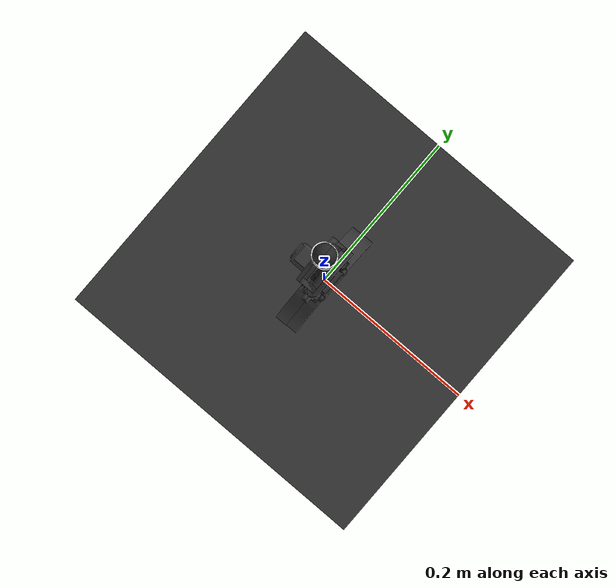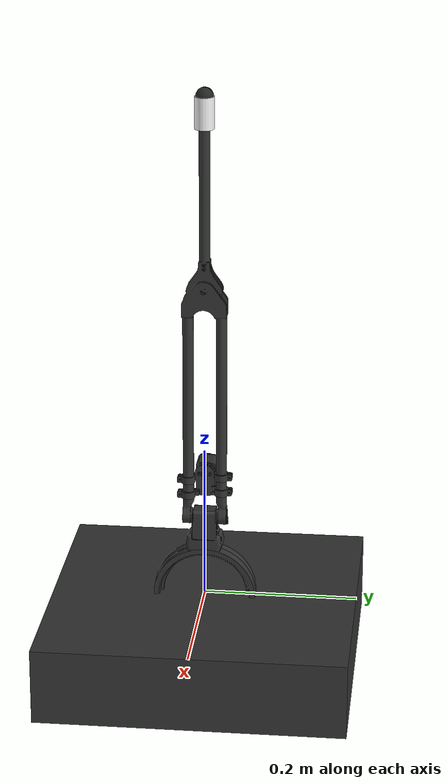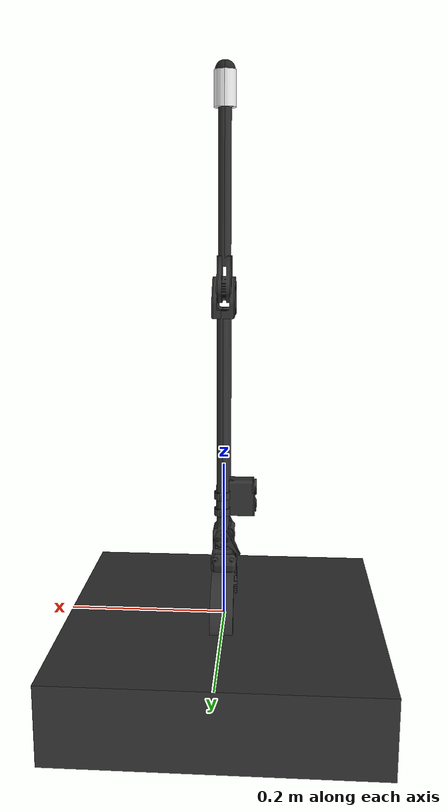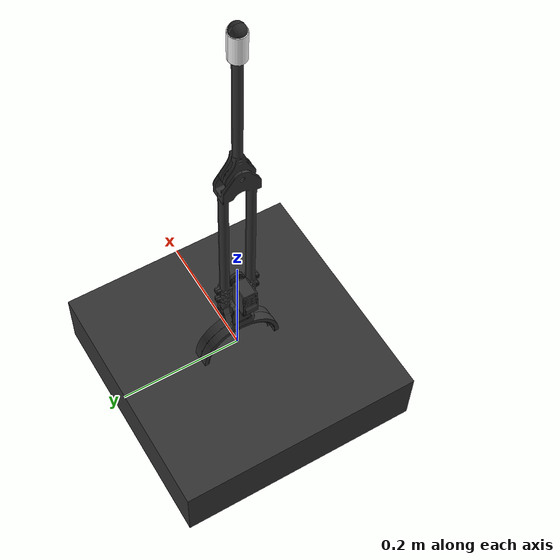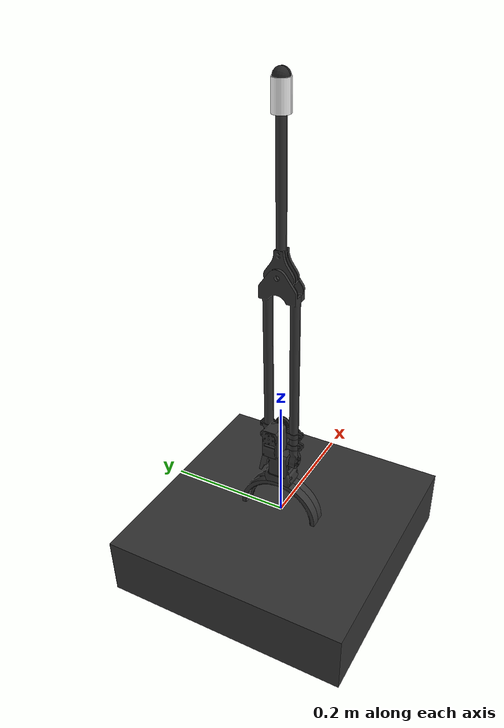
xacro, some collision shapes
<?xml version="1.0"?>
<robot name="martijn" xmlns:xacro="http://ros.org/wiki/xacro">
  <xacro:property name="uses_real_torques" value="true"/>
  <xacro:property name="forearm_tube_length" value="0.208"/>
  <!-- Collision box and inertia follow the tube: 0.27 m and 1.2446e-4 kg m^2 at the original. -->
  <xacro:property name="forearm_box_length" value="${forearm_tube_length - 0.008}"/>
  <xacro:property name="forearm_inertia" value="${0.00012446 * (forearm_box_length / 0.27) ** 2}"/>
  <!-- ForearmLink.stl is drawn for the original tube and reaches 0.273 m from the joint; its visual
       is stretched along the tube to end at forearm_tube_length. Visual only. -->
  <xacro:property name="forearm_mesh_length" value="0.273"/>

  <link name="base_link">
    <collision>
      <origin xyz="0 0 -0.05" rpy="0 0 0"/>
      <geometry>
        <box size="0.4 0.4 0.1"/>
      </geometry>
    </collision>
    <visual>
      <origin xyz="0 0 0" rpy="0 0 0"/>
      <geometry>
        <mesh filename="$(find px4_uam_sim)/meshes/Martijn.stl"/>
      </geometry>
      <material name="darkgray">
        <color rgba="0.2 0.2 0.2 1"/>
      </material>
    </visual>
    <inertial>
      <mass value="2.0"/>
      <inertia ixx="0.02966" ixy="0.0" ixz="0.0"
        iyy="0.04466" iyz="0.0"
        izz="0.06833"/>
    </inertial>
  </link>
    <gazebo reference="base_link">
      <sensor name="air_pressure_sensor" type="air_pressure">
        <always_on>1</always_on>
        <update_rate>50</update_rate>
        <gz_frame_id>base_link</gz_frame_id>
        <air_pressure>
          <pressure>
            <noise type="gaussian">
              <mean>0</mean>
              <stddev>0.01</stddev>
            </noise>
          </pressure>
        </air_pressure>
      </sensor>
      <sensor name="imu_sensor" type="imu">
        <always_on>1</always_on>
        <update_rate>1000</update_rate>
        <gz_frame_id>base_link</gz_frame_id>
        <imu>
          <angular_velocity>
            <x>
              <noise type="gaussian">
                <mean>0</mean>
                <stddev>0.0001</stddev>
                <dynamic_bias_stddev>0</dynamic_bias_stddev>
                <dynamic_bias_correlation_time>1000</dynamic_bias_correlation_time>
              </noise>
            </x>
            <y>
              <noise type="gaussian">
                <mean>0</mean>
                <stddev>0.0001</stddev>
                <dynamic_bias_stddev>0</dynamic_bias_stddev>
                <dynamic_bias_correlation_time>1000</dynamic_bias_correlation_time>
              </noise>
            </y>
            <z>
              <noise type="gaussian">
                <mean>0</mean>
                <stddev>0.0001</stddev>
                <dynamic_bias_stddev>0</dynamic_bias_stddev>
                <dynamic_bias_correlation_time>1000</dynamic_bias_correlation_time>
              </noise>
            </z>
          </angular_velocity>
          <linear_acceleration>
            <x>
              <noise type="gaussian">
                <mean>0</mean>
                <stddev>0.0001</stddev>
                <dynamic_bias_stddev>0</dynamic_bias_stddev>
                <dynamic_bias_correlation_time>300</dynamic_bias_correlation_time>
              </noise>
            </x>
            <y>
              <noise type="gaussian">
                <mean>0</mean>
                <stddev>0.0001</stddev>
                <dynamic_bias_stddev>0</dynamic_bias_stddev>
                <dynamic_bias_correlation_time>300</dynamic_bias_correlation_time>
              </noise>
            </y>
            <z>
              <noise type="gaussian">
                <mean>0</mean>
                <stddev>0.0001</stddev>
                <dynamic_bias_stddev>0</dynamic_bias_stddev>
                <dynamic_bias_correlation_time>300</dynamic_bias_correlation_time>
              </noise>
            </z>
          </linear_acceleration>
        </imu>
      </sensor>
      <sensor name="navsat_sensor" type="navsat">
        <always_on>1</always_on>
        <update_rate>100</update_rate>
        <gz_frame_id>base_link</gz_frame_id>
      </sensor>
      <sensor name="magnetometer_sensor" type="magnetometer">
        <gz_frame_id>base_link</gz_frame_id>
        <always_on>1</always_on>
        <update_rate>100</update_rate>
        <magnetometer>
          <x>
            <noise type="gaussian">
              <stddev>0.0001</stddev>
            </noise>
          </x>
          <y>
            <noise type="gaussian">
              <stddev>0.0001</stddev>
            </noise>
          </y>
          <z>
            <noise type="gaussian">
              <stddev>0.0001</stddev>
            </noise>
          </z>
        </magnetometer>
      </sensor>
    </gazebo>

<xacro:macro name="gazebo_rotor"
    params="direction parent motor_number color dx dy dz">

    <gazebo>
    <link name="rotor_${motor_number}">
      <gravity>true</gravity>
      <self_collide>false</self_collide>
      <velocity_decay/>
      <pose>${dx} ${dy} ${dz} 0 0 0</pose>
      <inertial>
          <mass>0.016076923076923075</mass>
          <inertia>
            <ixx>3.8464910483993325e-07</ixx>
            <iyy>2.6115851691700804e-05</iyy>
            <izz>2.649858234714004e-05</izz>
          </inertia>
      </inertial>
      <visual name="rotor_${motor_number}_visual">
        <pose>0 0 0 0 0 1.5708</pose>
        <geometry>
          <mesh>
            <scale>0.67 0.67 0.8461538461538461</scale>
            <uri>$(find px4_uam_sim)/meshes/centered_prop_ccw.stl</uri>
          </mesh>
        </geometry>
        <material>
          <script>
            <name>Gazebo/${color}</name>
            <uri>file://media/materials/scripts/gazebo.material</uri>
          </script>
        </material>
      </visual>
      <collision name="rotor_${motor_number}_collision">
        <pose>0 0 0 0 0 1.5708</pose>
        <geometry>
          <box>
            <size>0.26 0.016923076923076923 0.0008461538461538462</size>
          </box>
        </geometry>
        <surface>
          <contact>
            <ode>
              <min_depth>0.001</min_depth>
              <max_vel>0</max_vel>
            </ode>
          </contact>
          <friction>
            <ode/>
          </friction>
        </surface>
      </collision>
    </link>
    <joint name="rotor_${motor_number}_joint" type="revolute">
      <parent>${parent}</parent>
      <child>rotor_${motor_number}</child>
      <axis>
        <xyz>0 0 1</xyz>
        <limit>
          <lower>-1e+16</lower>
          <upper>1e+16</upper>
        </limit>
        <dynamics>
          <spring_reference>0</spring_reference>
          <spring_stiffness>0</spring_stiffness>
        </dynamics>
      </axis>
    </joint>
    <plugin filename="gz-sim-multicopter-motor-model-system" name="gz::sim::systems::MulticopterMotorModel">
      <jointName>rotor_${motor_number}_joint</jointName>
      <linkName>rotor_${motor_number}</linkName>
      <turningDirection>${direction}</turningDirection>
      <timeConstantUp>0.0125</timeConstantUp>
      <timeConstantDown>0.025</timeConstantDown>
      <maxRotVelocity>1000.0</maxRotVelocity>
      <motorConstant>4e-05</motorConstant>
      <momentConstant>0.016</momentConstant>
      <commandSubTopic>command/motor_speed</commandSubTopic>
      <motorNumber>${motor_number}</motorNumber>
      <rotorDragCoefficient>8.06428e-05</rotorDragCoefficient>
      <rollingMomentCoefficient>1e-06</rollingMomentCoefficient>
      <rotorVelocitySlowdownSim>10</rotorVelocitySlowdownSim>
      <motorType>velocity</motorType>
    </plugin>

  </gazebo>
</xacro:macro>

<!-- ============ ARM NUMBER 1 ================ -->

  <link name="shoulder_link_1">
    <collision>
      <origin xyz="0 0 0" rpy="0 0 0"/>
      <geometry>
        <cylinder radius="0.067" length="0.015"/>
      </geometry>
    </collision>
    <visual>
      <origin xyz="0 0 0" rpy="0 0 0"/>
      <geometry>
        <mesh filename="$(find px4_uam_sim)/meshes/ShoulderLink.stl"/>
      </geometry>
      <material name="darkgray">
        <color rgba="0.2 0.2 0.2 1"/>
      </material>
    </visual>
    <inertial>
      <mass value="0.05"/>
      <inertia ixx="9.48625e-05" ixy="0.0" ixz="0.0"
        iyy="9.48625e-05" iyz="0.0"
        izz="0.00018785"/>
    </inertial>
  </link>
  <joint name="shoulder_joint_1" type="revolute">
    <parent link="base_link"/>
    <child link="shoulder_link_1"/>
    <origin xyz="0.015 0 0" rpy="1.5708 -1.5708 -1.5708"/>
    <axis xyz="0 0 -1"/>
    <limit lower="-6.28" upper="6.28" velocity="2.0" effort="100.0"/>
    <dynamics damping="0.005" friction="0.01"/>
  </joint>
  <link name="motor_link_shoulder_1">
    <collision>
      <origin xyz="0 0 0" rpy="0 0 0"/>
      <geometry>
        <box size="0.025 0.035 0.045"/>
      </geometry>
    </collision>
    <visual>
      <origin xyz="0 0 0" rpy="0 0 0"/>
      <geometry>
        <mesh filename="$(find px4_uam_sim)/meshes/Servo.stl"/>
      </geometry>
      <material name="darkgray">
        <color rgba="0.2 0.2 0.2 1"/>
      </material>
    </visual>
    <inertial>
      <mass value="0.07"/>
      <inertia ixx="1.89583331e-05" ixy="0.0" ixz="0.0"
        iyy="1.54583331e-05" iyz="0.0"
        izz="1.0791662e-05"/>
    </inertial>
  </link>
  <joint name="motor_link_shoulder_1_joint" type="fixed">
    <parent link="shoulder_link_1"/>
    <child link="motor_link_shoulder_1"/>
    <origin xyz="0.097 0 0.014" rpy="0 1.5708 0"/>
    <axis xyz="0 0 1"/>
    <limit lower="0" upper="0" velocity="0" effort="0"/>
  </joint>
  <link name="elbow_link_1">
    <collision>
      <origin xyz="-0.16 0 0" rpy="0 0 0"/>
      <geometry>
        <box size="0.34 0.024 0.054"/>
      </geometry>
    </collision>
    <visual>
      <origin xyz="0 0 0" rpy="0 0 0"/>
      <geometry>
        <mesh filename="$(find px4_uam_sim)/meshes/ElbowLink.stl"/>
      </geometry>
      <material name="darkgray">
        <color rgba="0.2 0.2 0.2 1"/>
      </material>
    </visual>
    <inertial>
      <origin xyz="-0.16 0 0" rpy="0 0 0"/>
      <mass value="0.03"/>
      <inertia ixx="8.73e-06" ixy="0.0" ixz="0.0"
        iyy="0.000296289999" iyz="0.0"
        izz="0.00029043996"/>
    </inertial>
  </link>
  <joint name="elbow_joint_1" type="revolute">
    <parent link="motor_link_shoulder_1"/>
    <child link="elbow_link_1"/>
    <origin xyz="0 0 0.0125" rpy="1.5708 1.5708 3.14"/>
    <axis xyz="0 0 1"/>
    <limit lower="-1.5708" upper="2.0" velocity="2" effort="100"/>
    <dynamics damping="0.01" friction="0.1"/>
  </joint>
  <link name="motor_link_elbow_1">
    <collision>
      <origin xyz="0 0 0" rpy="0 0 0"/>
      <geometry>
        <box size="0.025 0.035 0.045"/>
      </geometry>
    </collision>
    <visual>
      <origin xyz="0 0 0" rpy="0 0 0"/>
      <geometry>
        <mesh filename="$(find px4_uam_sim)/meshes/ServoElbow.stl"/>
      </geometry>
      <material name="darkgray">
        <color rgba="0.2 0.2 0.2 1"/>
      </material>
    </visual>
    <inertial>
      <mass value="0.07"/>
      <inertia ixx="1.89583331e-05" ixy="0.0" ixz="0.0"
        iyy="1.54583331e-05" iyz="0.0"
        izz="1.0791662e-05"/>
    </inertial>
  </link>
  <joint name="motor_link_elbow_1_joint" type="fixed">
    <parent link="elbow_link_1"/>
    <child link="motor_link_elbow_1"/>
    <origin xyz="-0.05 0.015 0" rpy="0 -1.5708 0"/>
    <axis xyz="0 0 1"/>
    <limit lower="0" upper="0" velocity="0" effort="0"/>
  </joint>
  <link name="forearm_link_1">
    <collision>
      <origin xyz="${-forearm_box_length / 2} 0 0" rpy="0 0 0"/>
      <geometry>
        <box size="${forearm_box_length} 0.024 0.054"/>
      </geometry>
    </collision>
    <visual>
      <origin xyz="0 0 0" rpy="0 0 0"/>
      <geometry>
        <mesh filename="$(find px4_uam_sim)/meshes/ForearmLink.stl"
              scale="${forearm_tube_length / forearm_mesh_length} 1 1"/>
      </geometry>
      <material name="darkgray">
        <color rgba="0.2 0.2 0.2 1"/>
      </material>
    </visual>
    <inertial>
      <origin xyz="${-forearm_box_length / 2} 0 0" rpy="0 0 0"/>
      <mass value="0.03"/>
      <inertia ixx="4.9e-07" ixy="0.0" ixz="0.0"
        iyy="${forearm_inertia}" iyz="0.0"
        izz="${forearm_inertia}"/>
    </inertial>
  </link>
  <joint name="forearm_joint_1" type="revolute">
    <parent link="elbow_link_1"/>
    <child link="forearm_link_1"/>
    <origin xyz="-0.31 0 0" rpy="0 0 0"/>
    <axis xyz="0 -1 0"/>
    <limit lower="-2.1" upper="2.1" velocity="20" effort="100"/>
    <dynamics damping="0.0001" friction="0.0"/>
  </joint>

  <!-- TacTip 1: Mounted co-axially (0 deg) on the end of forearm tube -->
  <link name="tactip_link_1">
    <collision>
      <origin xyz="-0.04075 0 0" rpy="0 0 0"/>
      <geometry>
        <sphere radius="0.01125"/>
      </geometry>
      <surface>
        <friction>
          <ode>
            <!-- Silicone dome on printed plastic. Placeholder:  -->
            <mu>1.0</mu>
            <mu2>1.0</mu2>
          </ode>
        </friction>
      </surface>
    </collision>
    <!-- Black silicone contact dome -->
    <visual>
      <origin xyz="-0.04075 0 0" rpy="0 0 0"/>
      <geometry>
        <sphere radius="0.01125"/>
      </geometry>
      <material name="tactip_dome_1">
        <color rgba="0.15 0.15 0.15 1.0"/>
      </material>
    </visual>
    <!-- White printed housing -->
    <visual>
      <origin xyz="-0.02038 0 0" rpy="0 1.5708 0"/>
      <geometry>
        <cylinder radius="0.0125" length="0.04075"/>
      </geometry>
      <material name="tactip_housing_1">
        <color rgba="0.95 0.95 0.95 1.0"/>
      </material>
    </visual>
    <inertial>
      <origin xyz="-0.02038 0 0" rpy="0 0 0"/>
      <mass value="0.01"/>
      <inertia ixx="1e-5" ixy="0" ixz="0" iyy="1e-5" iyz="0" izz="1e-5"/>
    </inertial>
  </link>
  <joint name="tactip_joint_1" type="fixed">
    <parent link="forearm_link_1"/>
    <child link="tactip_link_1"/>
    <origin xyz="${-forearm_tube_length} 0 0" rpy="0 0 0"/>
  </joint>

<!-- ============ ARM NUMBER 2 ================ -->

  <link name="shoulder_link_2">
    <collision>
      <origin xyz="0 0 0" rpy="0 0 0"/>
      <geometry>
        <cylinder radius="0.067" length="0.015"/>
      </geometry>
    </collision>
    <visual>
      <origin xyz="0 0 0" rpy="0 0 0"/>
      <geometry>
        <mesh filename="$(find px4_uam_sim)/meshes/ShoulderLink.stl"/>
      </geometry>
      <material name="darkgray">
        <color rgba="0.2 0.2 0.2 1"/>
      </material>
    </visual>
    <inertial>
      <mass value="0.05"/>
      <inertia ixx="9.48625e-05" ixy="0.0" ixz="0.0"
        iyy="9.48625e-05" iyz="0.0"
        izz="0.00018785"/>
    </inertial>
  </link>
  <joint name="shoulder_joint_2" type="revolute">
    <parent link="base_link"/>
    <child link="shoulder_link_2"/>
    <origin xyz="-0.015 0 0" rpy="1.5708 -1.5708 1.5708"/>
    <axis xyz="0 0 1"/>
    <limit lower="-6.28" upper="6.28" velocity="2.0" effort="100.0"/>
    <dynamics damping="0.005" friction="0.01"/>
  </joint>
  <link name="motor_link_shoulder_2">
    <collision>
      <origin xyz="0 0 0" rpy="0 0 0"/>
      <geometry>
        <box size="0.025 0.035 0.045"/>
      </geometry>
    </collision>
    <visual>
      <origin xyz="0 0 0" rpy="0 0 0"/>
      <geometry>
        <mesh filename="$(find px4_uam_sim)/meshes/Servo.stl"/>
      </geometry>
      <material name="darkgray">
        <color rgba="0.2 0.2 0.2 1"/>
      </material>
    </visual>
    <inertial>
      <mass value="0.07"/>
      <inertia ixx="1.89583331e-05" ixy="0.0" ixz="0.0"
        iyy="1.54583331e-05" iyz="0.0"
        izz="1.0791662e-05"/>
    </inertial>
  </link>
  <joint name="motor_link_shoulder_2_joint" type="fixed">
    <parent link="shoulder_link_2"/>
    <child link="motor_link_shoulder_2"/>
    <origin xyz="0.097 0 0.0145" rpy="0 1.5708 0"/>
    <axis xyz="0 0 1"/>
    <limit lower="0" upper="0" velocity="0" effort="0"/>
  </joint>
  <link name="elbow_link_2">
    <collision>
      <origin xyz="-0.16 0 0" rpy="0 0 3.14"/>
      <geometry>
        <box size="0.34 0.024 0.054"/>
      </geometry>
    </collision>
    <visual>
      <origin xyz="0 0 0" rpy="0 0 0"/>
      <geometry>
        <mesh filename="$(find px4_uam_sim)/meshes/ElbowLink.stl"/>
      </geometry>
      <material name="darkgray">
        <color rgba="0.2 0.2 0.2 1"/>
      </material>
    </visual>
    <inertial>
      <origin xyz="-0.16 0 0" rpy="0 0 0"/>
      <mass value="0.03"/>
      <inertia ixx="8.73e-06" ixy="0.0" ixz="0.0"
        iyy="0.000296289999" iyz="0.0"
        izz="0.00029043996"/>
    </inertial>
  </link>
  <joint name="elbow_joint_2" type="revolute">
    <parent link="motor_link_shoulder_2"/>
    <child link="elbow_link_2"/>
    <origin xyz="0 0 0.0125" rpy="1.5708 1.5708 0"/>
    <axis xyz="0 0 1"/>
    <limit lower="-1.5708" upper="2.0" velocity="2" effort="100"/>
    <dynamics damping="0.01" friction="0.1"/>
  </joint>
  <link name="motor_link_elbow_2">
    <collision>
      <origin xyz="0 0 0" rpy="0 0 0"/>
      <geometry>
        <box size="0.025 0.035 0.045"/>
      </geometry>
    </collision>
    <visual>
      <origin xyz="0 0 0" rpy="0 0 0"/>
      <geometry>
        <mesh filename="$(find px4_uam_sim)/meshes/ServoElbow.stl"/>
      </geometry>
      <material name="darkgray">
        <color rgba="0.2 0.2 0.2 1"/>
      </material>
    </visual>
    <inertial>
      <mass value="0.07"/>
      <inertia ixx="1.89583331e-05" ixy="0.0" ixz="0.0"
        iyy="1.54583331e-05" iyz="0.0"
        izz="1.0791662e-05"/>
    </inertial>
  </link>
  <joint name="motor_link_elbow_2_joint" type="fixed">
    <parent link="elbow_link_2"/>
    <child link="motor_link_elbow_2"/>
    <origin xyz="-0.05 0.015 0" rpy="0 -1.5708 0"/>
    <axis xyz="0 0 1"/>
    <limit lower="0" upper="0" velocity="0" effort="0"/>
  </joint>
  <link name="forearm_link_2">
    <collision>
      <origin xyz="${-forearm_box_length / 2} 0 0" rpy="0 0 0"/>
      <geometry>
        <box size="${forearm_box_length} 0.024 0.054"/>
      </geometry>
    </collision>
    <visual>
      <origin xyz="0 0 0" rpy="0 0 0"/>
      <geometry>
        <mesh filename="$(find px4_uam_sim)/meshes/ForearmLink.stl"
              scale="${forearm_tube_length / forearm_mesh_length} 1 1"/>
      </geometry>
      <material name="darkgray">
        <color rgba="0.2 0.2 0.2 1"/>
      </material>
    </visual>
    <inertial>
      <origin xyz="${-forearm_box_length / 2} 0 0" rpy="0 0 0"/>
      <mass value="0.03"/>
      <inertia ixx="4.9e-07" ixy="0.0" ixz="0.0"
        iyy="${forearm_inertia}" iyz="0.0"
        izz="${forearm_inertia}"/>
    </inertial>
  </link>
  <joint name="forearm_joint_2" type="revolute">
    <parent link="elbow_link_2"/>
    <child link="forearm_link_2"/>
    <origin xyz="-0.31 0 0" rpy="0 0 0"/>
    <axis xyz="0 -1 0"/>
    <limit lower="-2.1" upper="2.1" velocity="20" effort="100"/>
    <dynamics damping="0.0001" friction="0.0"/>
  </joint>

  <!-- TacTip 2: Mounted co-axially (0 deg) on the end of forearm tube -->
  <link name="tactip_link_2">
    <!-- MEASURED geometry  -->
    <collision>
      <origin xyz="-0.04075 0 0" rpy="0 0 0"/>
      <geometry>
        <sphere radius="0.01125"/>
      </geometry>
      <surface>
        <friction>
          <ode>
            <!-- Silicone dome on printed plastic.  -->
            <mu>1.0</mu>
            <mu2>1.0</mu2>
          </ode>
        </friction>
      </surface>
    </collision>
    <!-- Black silicone contact dome -->
    <visual>
      <origin xyz="-0.04075 0 0" rpy="0 0 0"/>
      <geometry>
        <sphere radius="0.01125"/>
      </geometry>
      <material name="tactip_dome_2">
        <color rgba="0.15 0.15 0.15 1.0"/>
      </material>
    </visual>
    <!-- White printed housing -->
    <visual>
      <origin xyz="-0.02038 0 0" rpy="0 1.5708 0"/>
      <geometry>
        <cylinder radius="0.0125" length="0.04075"/>
      </geometry>
      <material name="tactip_housing_2">
        <color rgba="0.95 0.95 0.95 1.0"/>
      </material>
    </visual>
    <inertial>
      <origin xyz="-0.02038 0 0" rpy="0 0 0"/>
      <mass value="0.01"/>
      <inertia ixx="1e-5" ixy="0" ixz="0" iyy="1e-5" iyz="0" izz="1e-5"/>
    </inertial>
  </link>
  <joint name="tactip_joint_2" type="fixed">
    <parent link="forearm_link_2"/>
    <child link="tactip_link_2"/>
    <origin xyz="${-forearm_tube_length} 0 0" rpy="0 0 0"/>
  </joint>

  <xacro:gazebo_rotor
    direction="ccw"
    parent="base_link"
    motor_number="0"
    color="Blue"
    dx="0.2495"
    dy="-0.208"
    dz="0.03">
  </xacro:gazebo_rotor>

  <xacro:gazebo_rotor
    direction="ccw"
    parent="base_link"
    motor_number="1"
    color="Blue"
    dx="-0.2495"
    dy="0.208"
    dz="0.03">
  </xacro:gazebo_rotor>

  <xacro:gazebo_rotor
    direction="cw"
    parent="base_link"
    motor_number="2"
    color="Red"
    dx="0.2495"
    dy="0.208"
    dz="0.03">
  </xacro:gazebo_rotor>

  <xacro:gazebo_rotor
    direction="cw"
    parent="base_link"
    motor_number="3"
    color="Red"
    dx="-0.2495"
    dy="-0.208"
    dz="0.03">
  </xacro:gazebo_rotor>
  <gazebo>
    <plugin
      filename="gz-sim-odometry-publisher-system"
      name="gz::sim::systems::OdometryPublisher">
      <odom_frame>odom</odom_frame>
      <robot_base_frame>base_link</robot_base_frame>
      <dimensions>3</dimensions>
    </plugin>
    <plugin filename="gz-sim-joint-state-publisher-system" name="gz::sim::systems::JointStatePublisher">
	<joint_name>shoulder_joint_1</joint_name>
	<joint_name>elbow_joint_1</joint_name>
	<joint_name>forearm_joint_1</joint_name>
	<joint_name>shoulder_joint_2</joint_name>
	<joint_name>elbow_joint_2</joint_name>
	<joint_name>forearm_joint_2</joint_name>
    </plugin>
    <plugin filename="gz-sim-joint-controller-system" name="gz::sim::systems::JointController">
	<joint_name>shoulder_joint_1</joint_name>
	<initial_velocity>0.0</initial_velocity>
	<use_force_commands>${uses_real_torques}</use_force_commands>
	<topic>shoulder_1_joint_vel</topic>
	<p_gain>3.0</p_gain>
	<d_gain>0.001</d_gain>
	<i_gain>3.0</i_gain>
	<i_max>5</i_max>
	<i_min>-5</i_min>
    </plugin>
    <plugin filename="gz-sim-joint-controller-system" name="gz::sim::systems::JointController">
	<joint_name>elbow_joint_1</joint_name>
	<initial_velocity>0.0</initial_velocity>
	<use_force_commands>${uses_real_torques}</use_force_commands>
	<topic>elbow_1_joint_vel</topic>
	<p_gain>3.0</p_gain>
	<d_gain>0.0</d_gain>
	<i_gain>0.5</i_gain>
	<i_max>1</i_max>
	<i_min>-1</i_min>
    </plugin>
    <plugin filename="gz-sim-joint-controller-system" name="gz::sim::systems::JointController">
	<joint_name>forearm_joint_1</joint_name>
	<initial_velocity>0.0</initial_velocity>
	<use_force_commands>${uses_real_torques}</use_force_commands>
	<topic>forearm_1_joint_vel</topic>
	<p_gain>0.3</p_gain>
	<d_gain>0.0</d_gain>
	<i_gain>0.3</i_gain>
	<i_max>1</i_max>
	<i_min>-1</i_min>
    </plugin>
    <plugin filename="gz-sim-joint-controller-system" name="gz::sim::systems::JointController">
	<joint_name>shoulder_joint_2</joint_name>
	<initial_velocity>0.0</initial_velocity>
	<use_force_commands>${uses_real_torques}</use_force_commands>
	<topic>shoulder_2_joint_vel</topic>
	<p_gain>3.0</p_gain>
	<d_gain>0.001</d_gain>
	<i_gain>3.0</i_gain>
	<i_max>5</i_max>
	<i_min>-5</i_min>
    </plugin>
    <plugin filename="gz-sim-joint-controller-system" name="gz::sim::systems::JointController">
	<joint_name>elbow_joint_2</joint_name>
	<initial_velocity>0.0</initial_velocity>
	<use_force_commands>${uses_real_torques}</use_force_commands>
	<topic>elbow_2_joint_vel</topic>
	<p_gain>3.0</p_gain>
	<d_gain>0.0</d_gain>
	<i_gain>0.5</i_gain>
	<i_max>1</i_max>
	<i_min>-1</i_min>
    </plugin>
    <plugin filename="gz-sim-joint-controller-system" name="gz::sim::systems::JointController">
	<joint_name>forearm_joint_2</joint_name>
	<initial_velocity>0.0</initial_velocity>
	<use_force_commands>${uses_real_torques}</use_force_commands>
	<topic>forearm_2_joint_vel</topic>
	<p_gain>0.3</p_gain>
	<d_gain>0.0</d_gain>
	<i_gain>0.3</i_gain>
	<i_max>1</i_max>
	<i_min>-1</i_min>
    </plugin>
  </gazebo>
  <gazebo reference="base_link">
    <collision name="base_link_collision">
      <surface>
        <bounce>
          <restitution_coefficient>0.01</restitution_coefficient>
        </bounce>
        <contact>
          <ode>
            <max_vel>100.0</max_vel>
            <min_depth>0.001</min_depth>
          </ode>
        </contact>
        <friction>
          <ode>
            <mu>1000000.0</mu>
            <mu2>1000000.0</mu2>
          </ode>
        </friction>
      </surface>
    </collision>
  </gazebo>
  <gazebo reference="base_link">
    <velocity_decay>
      <linear>0.0</linear>
      <angular>0.0</angular>
    </velocity_decay>
  </gazebo>

</robot>
